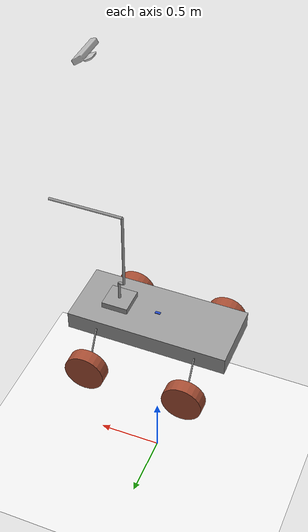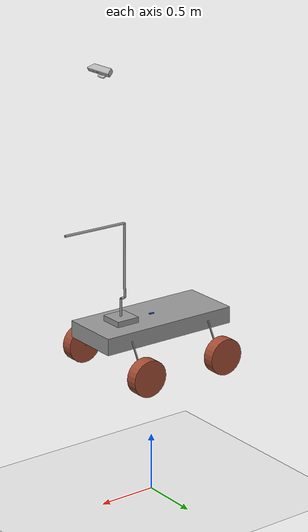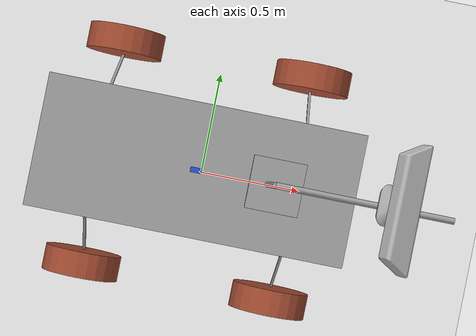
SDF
<sdf version="1.6">
 <world name="sim">
  <gravity>0 0 -9.8</gravity>
  <magnetic_field>6e-06 2.3e-05 -4.2e-05</magnetic_field>
  <atmosphere type="adiabatic"/>
  <physics name="default_physics" default="0" type="ode">
   <max_step_size>0.0025</max_step_size>
   <real_time_factor>1</real_time_factor>
   <real_time_update_rate>250</real_time_update_rate>
  </physics>
  <scene><ambient>0.6 0.6 0.6 1</ambient><background>0.7 0.7 0.7 1</background><shadows>1</shadows></scene>
  <spherical_coordinates>
   <surface_model>EARTH_WGS84</surface_model>
   <latitude_deg>042.729306</latitude_deg>
   <longitude_deg>-73.680906</longitude_deg>
   <elevation>0</elevation>
   <heading_deg>180</heading_deg>
  </spherical_coordinates>
  <include><uri>model://sun</uri><pose>0 0 500   0 0 0</pose></include>
  <include><uri>model://Robot_Base</uri><name>rover</name><pose>0 0 0.5   0 0 -1.5707</pose></include>
  <model name="ground_plane">
   <static>1</static>
   <link name="link">
    <collision name="collision">
     <geometry><plane><normal>0 0 1</normal><size>100 100</size></plane></geometry>
     <surface><friction><ode><mu>0.25</mu><mu2>0.25</mu2></ode></friction></surface>
    </collision>
    <visual name="visual">
     <cast_shadows>0</cast_shadows>
     <geometry><plane><normal>0 0 1</normal><size>100 100</size></plane></geometry>
     <material>
      <script><uri>file://media/materials/scripts/gazebo.material</uri><name>Gazebo/White</name></script>
     </material>
    </visual>
   </link>
   <pose>-70 0 0 0 -0 0</pose>
  </model>
  <plugin name="FixFrictionNode" filename="libFixFrictionNode.so"/>
 </world>
</sdf>
